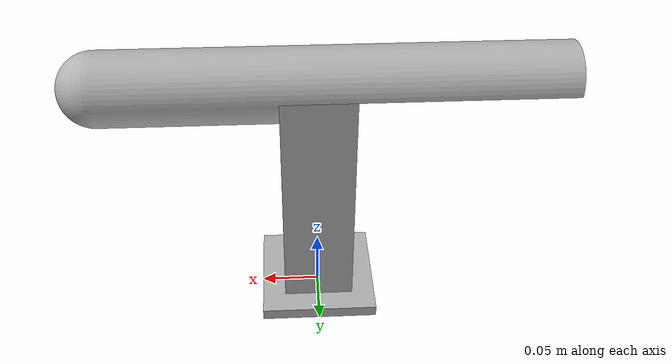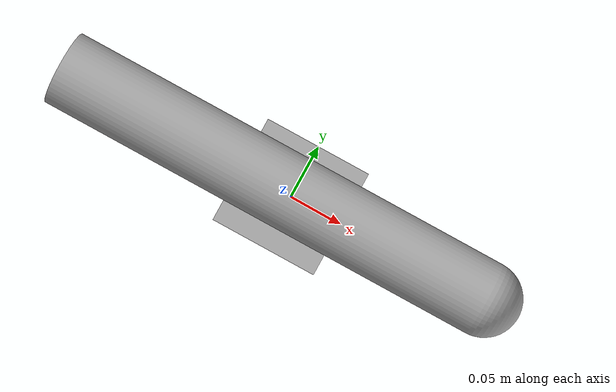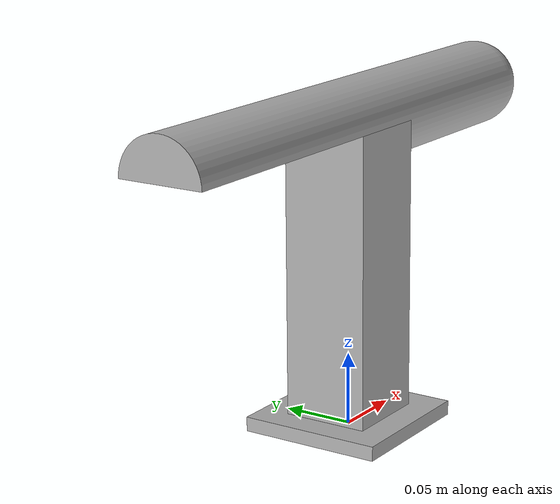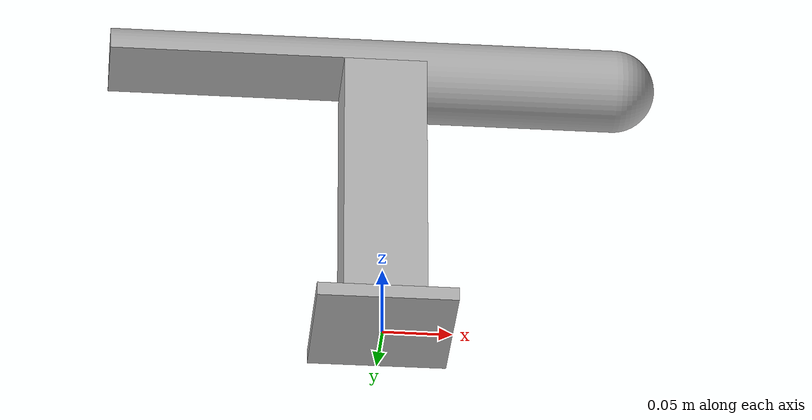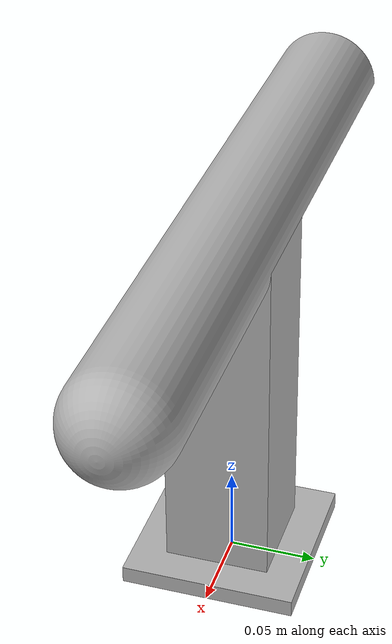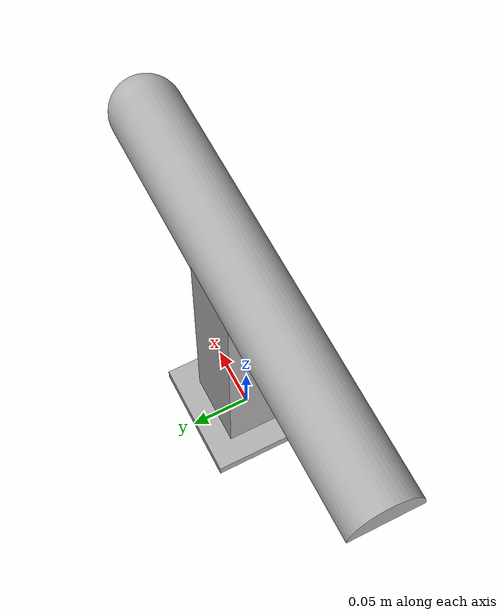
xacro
<?xml version="1.0" ?>
<robot name="bullet_arm" xmlns:xacro="http://www.ros.org/wiki/xacro">

<xacro:include filename="$(find bullet_arm_description)/urdf/materials.xacro" />
<xacro:include filename="$(find bullet_arm_description)/urdf/bullet_arm.ros2control" />
<xacro:include filename="$(find bullet_arm_description)/urdf/bullet_arm.gazebo" />
<link name="base_link">
  <inertial>
    <origin xyz="0.0 0.0 0.005" rpy="0 0 0"/>
    <mass value="0.7849999999999999"/>
    <inertia ixx="0.000661" iyy="0.000661" izz="0.001308" ixy="0.0" iyz="0.0" ixz="0.0"/>
  </inertial>
  <visual>
    <origin xyz="0 0 0" rpy="0 0 0"/>
    <geometry>
      <mesh filename="file://$(find bullet_arm_description)/meshes/base_link.stl" scale="0.001 0.001 0.001"/>
    </geometry>
    <material name="silver"/>
  </visual>
  <collision>
    <origin xyz="0 0 0" rpy="0 0 0"/>
    <geometry>
      <mesh filename="file://$(find bullet_arm_description)/meshes/base_link.stl" scale="0.001 0.001 0.001"/>
    </geometry>
  </collision>
</link>

<link name="joint_1_1">
  <inertial>
    <origin xyz="0.0 0.0 0.1" rpy="0 0 0"/>
    <mass value="5.651999999999999"/>
    <inertia ixx="0.020536" iyy="0.020536" izz="0.003391" ixy="0.0" iyz="0.0" ixz="0.0"/>
  </inertial>
  <visual>
    <origin xyz="-0.0 -0.0 -0.01" rpy="0 0 0"/>
    <geometry>
      <mesh filename="file://$(find bullet_arm_description)/meshes/joint_1_1.stl" scale="0.001 0.001 0.001"/>
    </geometry>
    <material name="silver"/>
  </visual>
  <collision>
    <origin xyz="-0.0 -0.0 -0.01" rpy="0 0 0"/>
    <geometry>
      <mesh filename="file://$(find bullet_arm_description)/meshes/joint_1_1.stl" scale="0.001 0.001 0.001"/>
    </geometry>
  </collision>
</link>

<link name="joint_2_1">
  <inertial>
    <origin xyz="0.028545454545454554 -2.3394032727765785e-17 0.0053244562779833915" rpy="0 0 0"/>
    <mass value="6.103721826843266"/>
    <inertia ixx="0.002534" iyy="0.076656" izz="0.076829" ixy="0.0" iyz="-0.0" ixz="0.00369"/>
  </inertial>
  <visual>
    <origin xyz="-0.0 -0.0 -0.21" rpy="0 0 0"/>
    <geometry>
      <mesh filename="file://$(find bullet_arm_description)/meshes/joint_2_1.stl" scale="0.001 0.001 0.001"/>
    </geometry>
    <material name="silver"/>
  </visual>
  <collision>
    <origin xyz="-0.0 -0.0 -0.21" rpy="0 0 0"/>
    <geometry>
      <mesh filename="file://$(find bullet_arm_description)/meshes/joint_2_1.stl" scale="0.001 0.001 0.001"/>
    </geometry>
  </collision>
</link>

<joint name="Revolute 1" type="continuous">
  <origin xyz="0.0 0.0 0.01" rpy="0 0 0"/>
  <parent link="base_link"/>
  <child link="joint_1_1"/>
  <axis xyz="0.0 0.0 1.0"/>
</joint>

<joint name="Slider 2" type="prismatic">
  <origin xyz="0.0 0.0 0.2" rpy="0 0 0"/>
  <parent link="joint_1_1"/>
  <child link="joint_2_1"/>
  <axis xyz="1.0 0.0 0.0"/>
  <limit upper="0.0" lower="0.0" effort="100" velocity="100"/>
</joint>

</robot>

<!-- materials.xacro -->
<robot name="bullet_arm" xmlns:xacro="http://www.ros.org/wiki/xacro" >

<material name="silver">
  <color rgba="0.700 0.700 0.700 1.000"/>
</material>

</robot>

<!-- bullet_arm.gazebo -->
<robot name="bullet_arm" xmlns:xacro="http://www.ros.org/wiki/xacro" >

<xacro:property name="body_color" value="Gazebo/Silver" />

<gazebo reference="base_link">
  <material>${body_color}</material>
  <mu1>0.2</mu1>
  <mu2>0.2</mu2>
  <self_collide>true</self_collide>
  <gravity>true</gravity>
</gazebo>

<gazebo reference="joint_1_1">
  <material>${body_color}</material>
  <mu1>0.2</mu1>
  <mu2>0.2</mu2>
  <self_collide>true</self_collide>
</gazebo>

<gazebo reference="joint_2_1">
  <material>${body_color}</material>
  <mu1>0.2</mu1>
  <mu2>0.2</mu2>
  <self_collide>true</self_collide>
</gazebo>

</robot>
